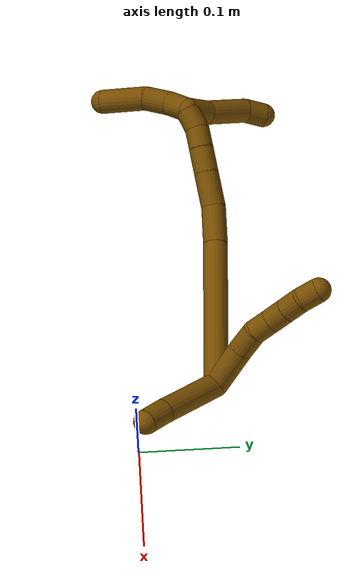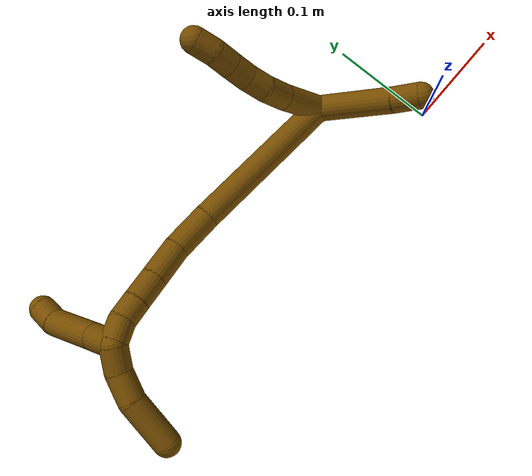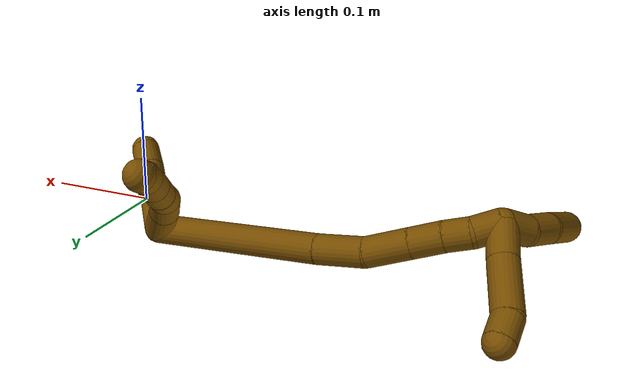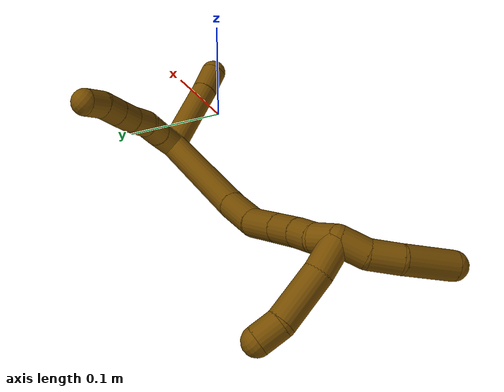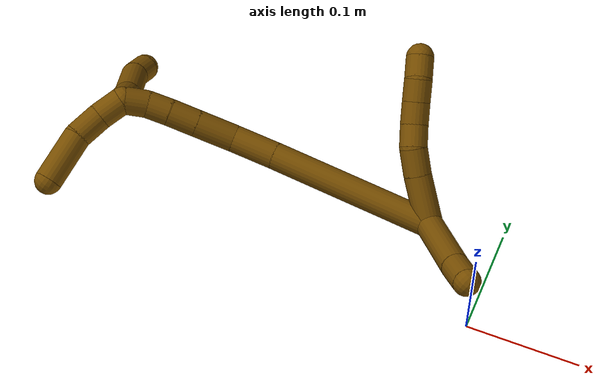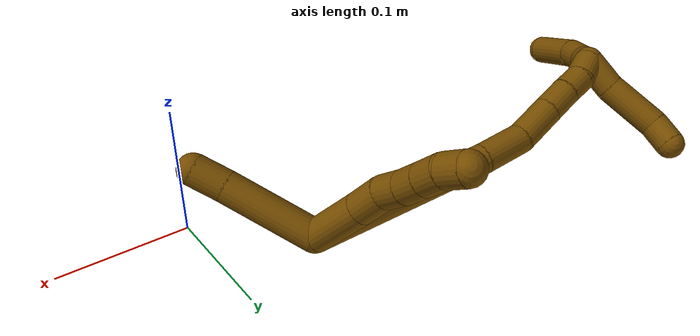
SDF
<sdf version="1.7">
 <world name="default">
  <model name="12">
   <static>0</static>
   <link name="12">
    <collision name="collision-cylinder-e_1_2_8">
     <pose>-0.017698 -0.001241 0.013758 0.089991 -0.908058 -0.043941</pose>
     <geometry><cylinder><radius>0.0125</radius><length>0.044902</length></cylinder></geometry>
     <surface>
      <friction><ode><mu>1.16</mu><mu2>1.16</mu2><slip1>0</slip1><slip2>0</slip2></ode></friction>
      <contact><ode><kp>1e+06</kp><kd>1</kd><max_vel>0</max_vel><min_depth>0.001</min_depth></ode></contact>
     </surface>
    </collision>
    <visual name="visual-cylinder-e_1_2_8">
     <pose>-0.017698 -0.001241 0.013758 0.089991 -0.908058 -0.043941</pose>
     <geometry><cylinder><radius>0.0125</radius><length>0.044902</length></cylinder></geometry>
     <material><ambient>0.466667 0.301961 0 1</ambient></material>
    </visual>
    <collision name="collision-cylinder-e_2_8_9">
     <pose>-0.044499 -0.003331 0.035828 0.101712 -0.828154 -0.044732</pose>
     <geometry><cylinder><radius>0.0125</radius><length>0.024713</length></cylinder></geometry>
     <surface>
      <friction><ode><mu>1.16</mu><mu2>1.16</mu2><slip1>0</slip1><slip2>0</slip2></ode></friction>
      <contact><ode><kp>1e+06</kp><kd>1</kd><max_vel>0</max_vel><min_depth>0.001</min_depth></ode></contact>
     </surface>
    </collision>
    <visual name="visual-cylinder-e_2_8_9">
     <pose>-0.044499 -0.003331 0.035828 0.101712 -0.828154 -0.044732</pose>
     <geometry><cylinder><radius>0.0125</radius><length>0.024713</length></cylinder></geometry>
     <material><ambient>0.466667 0.301961 0 1</ambient></material>
    </visual>
    <collision name="collision-cylinder-e_3_9_10">
     <pose>-0.060021 -0.002048 0.051642 -0.276876 -0.688673 0.09985</pose>
     <geometry><cylinder><radius>0.0125</radius><length>0.0202</length></cylinder></geometry>
     <surface>
      <friction><ode><mu>1.16</mu><mu2>1.16</mu2><slip1>0</slip1><slip2>0</slip2></ode></friction>
      <contact><ode><kp>1e+06</kp><kd>1</kd><max_vel>0</max_vel><min_depth>0.001</min_depth></ode></contact>
     </surface>
    </collision>
    <visual name="visual-cylinder-e_3_9_10">
     <pose>-0.060021 -0.002048 0.051642 -0.276876 -0.688673 0.09985</pose>
     <geometry><cylinder><radius>0.0125</radius><length>0.0202</length></cylinder></geometry>
     <material><ambient>0.466667 0.301961 0 1</ambient></material>
    </visual>
    <collision name="collision-cylinder-e_4_10_11">
     <pose>-0.072354 0.001237 0.067167 -0.142736 -0.630331 0.046607</pose>
     <geometry><cylinder><radius>0.0125</radius><length>0.02007</length></cylinder></geometry>
     <surface>
      <friction><ode><mu>1.16</mu><mu2>1.16</mu2><slip1>0</slip1><slip2>0</slip2></ode></friction>
      <contact><ode><kp>1e+06</kp><kd>1</kd><max_vel>0</max_vel><min_depth>0.001</min_depth></ode></contact>
     </surface>
    </collision>
    <visual name="visual-cylinder-e_4_10_11">
     <pose>-0.072354 0.001237 0.067167 -0.142736 -0.630331 0.046607</pose>
     <geometry><cylinder><radius>0.0125</radius><length>0.02007</length></cylinder></geometry>
     <material><ambient>0.466667 0.301961 0 1</ambient></material>
    </visual>
    <collision name="collision-cylinder-e_5_11_12">
     <pose>-0.084041 0.003456 0.083333 -0.130185 -0.612676 0.041229</pose>
     <geometry><cylinder><radius>0.0125</radius><length>0.020072</length></cylinder></geometry>
     <surface>
      <friction><ode><mu>1.16</mu><mu2>1.16</mu2><slip1>0</slip1><slip2>0</slip2></ode></friction>
      <contact><ode><kp>1e+06</kp><kd>1</kd><max_vel>0</max_vel><min_depth>0.001</min_depth></ode></contact>
     </surface>
    </collision>
    <visual name="visual-cylinder-e_5_11_12">
     <pose>-0.084041 0.003456 0.083333 -0.130185 -0.612676 0.041229</pose>
     <geometry><cylinder><radius>0.0125</radius><length>0.020072</length></cylinder></geometry>
     <material><ambient>0.466667 0.301961 0 1</ambient></material>
    </visual>
    <collision name="collision-cylinder-e_6_12_6">
     <pose>-0.09594 0.007855 0.098669 -0.433804 -0.658 0.150188</pose>
     <geometry><cylinder><radius>0.0125</radius><length>0.020043</length></cylinder></geometry>
     <surface>
      <friction><ode><mu>1.16</mu><mu2>1.16</mu2><slip1>0</slip1><slip2>0</slip2></ode></friction>
      <contact><ode><kp>1e+06</kp><kd>1</kd><max_vel>0</max_vel><min_depth>0.001</min_depth></ode></contact>
     </surface>
    </collision>
    <visual name="visual-cylinder-e_6_12_6">
     <pose>-0.09594 0.007855 0.098669 -0.433804 -0.658 0.150188</pose>
     <geometry><cylinder><radius>0.0125</radius><length>0.020043</length></cylinder></geometry>
     <material><ambient>0.466667 0.301961 0 1</ambient></material>
    </visual>
    <collision name="collision-cylinder-e_1_2_13">
     <pose>0.02275 -0.028967 0.002399 1.48815 0.664104 0.614754</pose>
     <geometry><cylinder><radius>0.0125</radius><length>0.073822</length></cylinder></geometry>
     <surface>
      <friction><ode><mu>1.16</mu><mu2>1.16</mu2><slip1>0</slip1><slip2>0</slip2></ode></friction>
      <contact><ode><kp>1e+06</kp><kd>1</kd><max_vel>0</max_vel><min_depth>0.001</min_depth></ode></contact>
     </surface>
    </collision>
    <visual name="visual-cylinder-e_1_2_13">
     <pose>0.02275 -0.028967 0.002399 1.48815 0.664104 0.614754</pose>
     <geometry><cylinder><radius>0.0125</radius><length>0.073822</length></cylinder></geometry>
     <material><ambient>0.466667 0.301961 0 1</ambient></material>
    </visual>
    <collision name="collision-cylinder-e_2_13_5">
     <pose>0.053919 -0.067867 0.006135 1.43713 0.698631 0.616778</pose>
     <geometry><cylinder><radius>0.0125</radius><length>0.026178</length></cylinder></geometry>
     <surface>
      <friction><ode><mu>1.16</mu><mu2>1.16</mu2><slip1>0</slip1><slip2>0</slip2></ode></friction>
      <contact><ode><kp>1e+06</kp><kd>1</kd><max_vel>0</max_vel><min_depth>0.001</min_depth></ode></contact>
     </surface>
    </collision>
    <visual name="visual-cylinder-e_2_13_5">
     <pose>0.053919 -0.067867 0.006135 1.43713 0.698631 0.616778</pose>
     <geometry><cylinder><radius>0.0125</radius><length>0.026178</length></cylinder></geometry>
     <material><ambient>0.466667 0.301961 0 1</ambient></material>
    </visual>
    <collision name="collision-cylinder-e_1_2_14">
     <pose>-0.072751 -0.005052 -0.022605 2.92172 -1.26256 -2.84189</pose>
     <geometry><cylinder><radius>0.0125</radius><length>0.152698</length></cylinder></geometry>
     <surface>
      <friction><ode><mu>1.16</mu><mu2>1.16</mu2><slip1>0</slip1><slip2>0</slip2></ode></friction>
      <contact><ode><kp>1e+06</kp><kd>1</kd><max_vel>0</max_vel><min_depth>0.001</min_depth></ode></contact>
     </surface>
    </collision>
    <visual name="visual-cylinder-e_1_2_14">
     <pose>-0.072751 -0.005052 -0.022605 2.92172 -1.26256 -2.84189</pose>
     <geometry><cylinder><radius>0.0125</radius><length>0.152698</length></cylinder></geometry>
     <material><ambient>0.466667 0.301961 0 1</ambient></material>
    </visual>
    <collision name="collision-cylinder-e_2_14_15">
     <pose>-0.164747 -0.012665 -0.051215 2.7384 -1.24373 -2.58605</pose>
     <geometry><cylinder><radius>0.0125</radius><length>0.040647</length></cylinder></geometry>
     <surface>
      <friction><ode><mu>1.16</mu><mu2>1.16</mu2><slip1>0</slip1><slip2>0</slip2></ode></friction>
      <contact><ode><kp>1e+06</kp><kd>1</kd><max_vel>0</max_vel><min_depth>0.001</min_depth></ode></contact>
     </surface>
    </collision>
    <visual name="visual-cylinder-e_2_14_15">
     <pose>-0.164747 -0.012665 -0.051215 2.7384 -1.24373 -2.58605</pose>
     <geometry><cylinder><radius>0.0125</radius><length>0.040647</length></cylinder></geometry>
     <material><ambient>0.466667 0.301961 0 1</ambient></material>
    </visual>
    <collision name="collision-cylinder-e_3_15_16">
     <pose>-0.20049 -0.022144 -0.061434 2.11783 -1.11441 -1.67405</pose>
     <geometry><cylinder><radius>0.0125</radius><length>0.036755</length></cylinder></geometry>
     <surface>
      <friction><ode><mu>1.16</mu><mu2>1.16</mu2><slip1>0</slip1><slip2>0</slip2></ode></friction>
      <contact><ode><kp>1e+06</kp><kd>1</kd><max_vel>0</max_vel><min_depth>0.001</min_depth></ode></contact>
     </surface>
    </collision>
    <visual name="visual-cylinder-e_3_15_16">
     <pose>-0.20049 -0.022144 -0.061434 2.11783 -1.11441 -1.67405</pose>
     <geometry><cylinder><radius>0.0125</radius><length>0.036755</length></cylinder></geometry>
     <material><ambient>0.466667 0.301961 0 1</ambient></material>
    </visual>
    <collision name="collision-cylinder-e_4_16_17">
     <pose>-0.228799 -0.03399 -0.068651 2.11825 -1.11634 -1.67668</pose>
     <geometry><cylinder><radius>0.0125</radius><length>0.026295</length></cylinder></geometry>
     <surface>
      <friction><ode><mu>1.16</mu><mu2>1.16</mu2><slip1>0</slip1><slip2>0</slip2></ode></friction>
      <contact><ode><kp>1e+06</kp><kd>1</kd><max_vel>0</max_vel><min_depth>0.001</min_depth></ode></contact>
     </surface>
    </collision>
    <visual name="visual-cylinder-e_4_16_17">
     <pose>-0.228799 -0.03399 -0.068651 2.11825 -1.11634 -1.67668</pose>
     <geometry><cylinder><radius>0.0125</radius><length>0.026295</length></cylinder></geometry>
     <material><ambient>0.466667 0.301961 0 1</ambient></material>
    </visual>
    <collision name="collision-cylinder-e_5_17_18">
     <pose>-0.25025 -0.04248 -0.074628 2.26633 -1.1221 -1.86157</pose>
     <geometry><cylinder><radius>0.0125</radius><length>0.021394</length></cylinder></geometry>
     <surface>
      <friction><ode><mu>1.16</mu><mu2>1.16</mu2><slip1>0</slip1><slip2>0</slip2></ode></friction>
      <contact><ode><kp>1e+06</kp><kd>1</kd><max_vel>0</max_vel><min_depth>0.001</min_depth></ode></contact>
     </surface>
    </collision>
    <visual name="visual-cylinder-e_5_17_18">
     <pose>-0.25025 -0.04248 -0.074628 2.26633 -1.1221 -1.86157</pose>
     <geometry><cylinder><radius>0.0125</radius><length>0.021394</length></cylinder></geometry>
     <material><ambient>0.466667 0.301961 0 1</ambient></material>
    </visual>
    <collision name="collision-cylinder-e_6_18_1">
     <pose>-0.268175 -0.05212 -0.081813 2.17677 -0.84225 -1.41517</pose>
     <geometry><cylinder><radius>0.0125</radius><length>0.022212</length></cylinder></geometry>
     <surface>
      <friction><ode><mu>1.16</mu><mu2>1.16</mu2><slip1>0</slip1><slip2>0</slip2></ode></friction>
      <contact><ode><kp>1e+06</kp><kd>1</kd><max_vel>0</max_vel><min_depth>0.001</min_depth></ode></contact>
     </surface>
    </collision>
    <visual name="visual-cylinder-e_6_18_1">
     <pose>-0.268175 -0.05212 -0.081813 2.17677 -0.84225 -1.41517</pose>
     <geometry><cylinder><radius>0.0125</radius><length>0.022212</length></cylinder></geometry>
     <material><ambient>0.466667 0.301961 0 1</ambient></material>
    </visual>
    <collision name="collision-cylinder-e_1_1_19">
     <pose>-0.2794 -0.061762 -0.097607 2.84308 -0.237881 -1.34301</pose>
     <geometry><cylinder><radius>0.0125</radius><length>0.02494</length></cylinder></geometry>
     <surface>
      <friction><ode><mu>1.16</mu><mu2>1.16</mu2><slip1>0</slip1><slip2>0</slip2></ode></friction>
      <contact><ode><kp>1e+06</kp><kd>1</kd><max_vel>0</max_vel><min_depth>0.001</min_depth></ode></contact>
     </surface>
    </collision>
    <visual name="visual-cylinder-e_1_1_19">
     <pose>-0.2794 -0.061762 -0.097607 2.84308 -0.237881 -1.34301</pose>
     <geometry><cylinder><radius>0.0125</radius><length>0.02494</length></cylinder></geometry>
     <material><ambient>0.466667 0.301961 0 1</ambient></material>
    </visual>
    <collision name="collision-cylinder-e_2_19_20">
     <pose>-0.283098 -0.072591 -0.120712 2.579 -0.055691 -0.192187</pose>
     <geometry><cylinder><radius>0.0125</radius><length>0.027285</length></cylinder></geometry>
     <surface>
      <friction><ode><mu>1.16</mu><mu2>1.16</mu2><slip1>0</slip1><slip2>0</slip2></ode></friction>
      <contact><ode><kp>1e+06</kp><kd>1</kd><max_vel>0</max_vel><min_depth>0.001</min_depth></ode></contact>
     </surface>
    </collision>
    <visual name="visual-cylinder-e_2_19_20">
     <pose>-0.283098 -0.072591 -0.120712 2.579 -0.055691 -0.192187</pose>
     <geometry><cylinder><radius>0.0125</radius><length>0.027285</length></cylinder></geometry>
     <material><ambient>0.466667 0.301961 0 1</ambient></material>
    </visual>
    <collision name="collision-cylinder-e_3_20_4">
     <pose>-0.278864 -0.091328 -0.152584 2.62828 0.21057 0.765592</pose>
     <geometry><cylinder><radius>0.0125</radius><length>0.047775</length></cylinder></geometry>
     <surface>
      <friction><ode><mu>1.16</mu><mu2>1.16</mu2><slip1>0</slip1><slip2>0</slip2></ode></friction>
      <contact><ode><kp>1e+06</kp><kd>1</kd><max_vel>0</max_vel><min_depth>0.001</min_depth></ode></contact>
     </surface>
    </collision>
    <visual name="visual-cylinder-e_3_20_4">
     <pose>-0.278864 -0.091328 -0.152584 2.62828 0.21057 0.765592</pose>
     <geometry><cylinder><radius>0.0125</radius><length>0.047775</length></cylinder></geometry>
     <material><ambient>0.466667 0.301961 0 1</ambient></material>
    </visual>
    <collision name="collision-cylinder-e_1_1_21">
     <pose>-0.280454 -0.044216 -0.087755 -1.6939 -0.276131 0.31185</pose>
     <geometry><cylinder><radius>0.0125</radius><length>0.029286</length></cylinder></geometry>
     <surface>
      <friction><ode><mu>1.16</mu><mu2>1.16</mu2><slip1>0</slip1><slip2>0</slip2></ode></friction>
      <contact><ode><kp>1e+06</kp><kd>1</kd><max_vel>0</max_vel><min_depth>0.001</min_depth></ode></contact>
     </surface>
    </collision>
    <visual name="visual-cylinder-e_1_1_21">
     <pose>-0.280454 -0.044216 -0.087755 -1.6939 -0.276131 0.31185</pose>
     <geometry><cylinder><radius>0.0125</radius><length>0.029286</length></cylinder></geometry>
     <material><ambient>0.466667 0.301961 0 1</ambient></material>
    </visual>
    <collision name="collision-cylinder-e_2_21_22">
     <pose>-0.294205 -0.00791 -0.088117 -1.50962 -0.41145 0.387643</pose>
     <geometry><cylinder><radius>0.0125</radius><length>0.048806</length></cylinder></geometry>
     <surface>
      <friction><ode><mu>1.16</mu><mu2>1.16</mu2><slip1>0</slip1><slip2>0</slip2></ode></friction>
      <contact><ode><kp>1e+06</kp><kd>1</kd><max_vel>0</max_vel><min_depth>0.001</min_depth></ode></contact>
     </surface>
    </collision>
    <visual name="visual-cylinder-e_2_21_22">
     <pose>-0.294205 -0.00791 -0.088117 -1.50962 -0.41145 0.387643</pose>
     <geometry><cylinder><radius>0.0125</radius><length>0.048806</length></cylinder></geometry>
     <material><ambient>0.466667 0.301961 0 1</ambient></material>
    </visual>
    <collision name="collision-cylinder-e_3_22_3">
     <pose>-0.305322 0.02498 -0.084196 -1.33367 -0.124199 0.097807</pose>
     <geometry><cylinder><radius>0.0125</radius><length>0.021909</length></cylinder></geometry>
     <surface>
      <friction><ode><mu>1.16</mu><mu2>1.16</mu2><slip1>0</slip1><slip2>0</slip2></ode></friction>
      <contact><ode><kp>1e+06</kp><kd>1</kd><max_vel>0</max_vel><min_depth>0.001</min_depth></ode></contact>
     </surface>
    </collision>
    <visual name="visual-cylinder-e_3_22_3">
     <pose>-0.305322 0.02498 -0.084196 -1.33367 -0.124199 0.097807</pose>
     <geometry><cylinder><radius>0.0125</radius><length>0.021909</length></cylinder></geometry>
     <material><ambient>0.466667 0.301961 0 1</ambient></material>
    </visual>
    <collision name="collision-sphere-3">
     <pose>-0.306679 0.035546 -0.081643 0 -0 0</pose>
     <geometry><sphere><radius>0.0125</radius></sphere></geometry>
     <surface>
      <friction><ode><mu>1.16</mu><mu2>1.16</mu2><slip1>0</slip1><slip2>0</slip2></ode></friction>
      <contact><ode><kp>1e+06</kp><kd>1</kd><max_vel>0</max_vel><min_depth>0.001</min_depth></ode></contact>
     </surface>
    </collision>
    <visual name="visual-sphere-3">
     <pose>-0.306679 0.035546 -0.081643 0 -0 0</pose>
     <geometry><sphere><radius>0.0125</radius></sphere></geometry>
     <material><ambient>0.466667 0.301961 0 1</ambient></material>
    </visual>
    <collision name="collision-sphere-22">
     <pose>-0.303965 0.014414 -0.086749 0 -0 0</pose>
     <geometry><sphere><radius>0.0125</radius></sphere></geometry>
     <surface>
      <friction><ode><mu>1.16</mu><mu2>1.16</mu2><slip1>0</slip1><slip2>0</slip2></ode></friction>
      <contact><ode><kp>1e+06</kp><kd>1</kd><max_vel>0</max_vel><min_depth>0.001</min_depth></ode></contact>
     </surface>
    </collision>
    <visual name="visual-sphere-22">
     <pose>-0.303965 0.014414 -0.086749 0 -0 0</pose>
     <geometry><sphere><radius>0.0125</radius></sphere></geometry>
     <material><ambient>0.466667 0.301961 0 1</ambient></material>
    </visual>
    <collision name="collision-sphere-21">
     <pose>-0.284446 -0.030235 -0.089484 0 -0 0</pose>
     <geometry><sphere><radius>0.0125</radius></sphere></geometry>
     <surface>
      <friction><ode><mu>1.16</mu><mu2>1.16</mu2><slip1>0</slip1><slip2>0</slip2></ode></friction>
      <contact><ode><kp>1e+06</kp><kd>1</kd><max_vel>0</max_vel><min_depth>0.001</min_depth></ode></contact>
     </surface>
    </collision>
    <visual name="visual-sphere-21">
     <pose>-0.284446 -0.030235 -0.089484 0 -0 0</pose>
     <geometry><sphere><radius>0.0125</radius></sphere></geometry>
     <material><ambient>0.466667 0.301961 0 1</ambient></material>
    </visual>
    <collision name="collision-sphere-4">
     <pose>-0.273871 -0.102799 -0.172933 0 -0 0</pose>
     <geometry><sphere><radius>0.0125</radius></sphere></geometry>
     <surface>
      <friction><ode><mu>1.16</mu><mu2>1.16</mu2><slip1>0</slip1><slip2>0</slip2></ode></friction>
      <contact><ode><kp>1e+06</kp><kd>1</kd><max_vel>0</max_vel><min_depth>0.001</min_depth></ode></contact>
     </surface>
    </collision>
    <visual name="visual-sphere-4">
     <pose>-0.273871 -0.102799 -0.172933 0 -0 0</pose>
     <geometry><sphere><radius>0.0125</radius></sphere></geometry>
     <material><ambient>0.466667 0.301961 0 1</ambient></material>
    </visual>
    <collision name="collision-sphere-20">
     <pose>-0.283857 -0.079857 -0.132234 0 -0 0</pose>
     <geometry><sphere><radius>0.0125</radius></sphere></geometry>
     <surface>
      <friction><ode><mu>1.16</mu><mu2>1.16</mu2><slip1>0</slip1><slip2>0</slip2></ode></friction>
      <contact><ode><kp>1e+06</kp><kd>1</kd><max_vel>0</max_vel><min_depth>0.001</min_depth></ode></contact>
     </surface>
    </collision>
    <visual name="visual-sphere-20">
     <pose>-0.283857 -0.079857 -0.132234 0 -0 0</pose>
     <geometry><sphere><radius>0.0125</radius></sphere></geometry>
     <material><ambient>0.466667 0.301961 0 1</ambient></material>
    </visual>
    <collision name="collision-sphere-12">
     <pose>-0.089812 0.004522 0.091474 0 -0 0</pose>
     <geometry><sphere><radius>0.0125</radius></sphere></geometry>
     <surface>
      <friction><ode><mu>1.16</mu><mu2>1.16</mu2><slip1>0</slip1><slip2>0</slip2></ode></friction>
      <contact><ode><kp>1e+06</kp><kd>1</kd><max_vel>0</max_vel><min_depth>0.001</min_depth></ode></contact>
     </surface>
    </collision>
    <visual name="visual-sphere-12">
     <pose>-0.089812 0.004522 0.091474 0 -0 0</pose>
     <geometry><sphere><radius>0.0125</radius></sphere></geometry>
     <material><ambient>0.466667 0.301961 0 1</ambient></material>
    </visual>
    <collision name="collision-sphere-11">
     <pose>-0.078269 0.00239 0.075192 0 -0 0</pose>
     <geometry><sphere><radius>0.0125</radius></sphere></geometry>
     <surface>
      <friction><ode><mu>1.16</mu><mu2>1.16</mu2><slip1>0</slip1><slip2>0</slip2></ode></friction>
      <contact><ode><kp>1e+06</kp><kd>1</kd><max_vel>0</max_vel><min_depth>0.001</min_depth></ode></contact>
     </surface>
    </collision>
    <visual name="visual-sphere-11">
     <pose>-0.078269 0.00239 0.075192 0 -0 0</pose>
     <geometry><sphere><radius>0.0125</radius></sphere></geometry>
     <material><ambient>0.466667 0.301961 0 1</ambient></material>
    </visual>
    <collision name="collision-sphere-10">
     <pose>-0.06644 8.4e-05 0.059143 0 -0 0</pose>
     <geometry><sphere><radius>0.0125</radius></sphere></geometry>
     <surface>
      <friction><ode><mu>1.16</mu><mu2>1.16</mu2><slip1>0</slip1><slip2>0</slip2></ode></friction>
      <contact><ode><kp>1e+06</kp><kd>1</kd><max_vel>0</max_vel><min_depth>0.001</min_depth></ode></contact>
     </surface>
    </collision>
    <visual name="visual-sphere-10">
     <pose>-0.06644 8.4e-05 0.059143 0 -0 0</pose>
     <geometry><sphere><radius>0.0125</radius></sphere></geometry>
     <material><ambient>0.466667 0.301961 0 1</ambient></material>
    </visual>
    <collision name="collision-sphere-9">
     <pose>-0.053602 -0.00418 0.044141 0 -0 0</pose>
     <geometry><sphere><radius>0.0125</radius></sphere></geometry>
     <surface>
      <friction><ode><mu>1.16</mu><mu2>1.16</mu2><slip1>0</slip1><slip2>0</slip2></ode></friction>
      <contact><ode><kp>1e+06</kp><kd>1</kd><max_vel>0</max_vel><min_depth>0.001</min_depth></ode></contact>
     </surface>
    </collision>
    <visual name="visual-sphere-9">
     <pose>-0.053602 -0.00418 0.044141 0 -0 0</pose>
     <geometry><sphere><radius>0.0125</radius></sphere></geometry>
     <material><ambient>0.466667 0.301961 0 1</ambient></material>
    </visual>
    <collision name="collision-sphere-2">
     <geometry><sphere><radius>0.0125</radius></sphere></geometry>
     <surface>
      <friction><ode><mu>1.16</mu><mu2>1.16</mu2><slip1>0</slip1><slip2>0</slip2></ode></friction>
      <contact><ode><kp>1e+06</kp><kd>1</kd><max_vel>0</max_vel><min_depth>0.001</min_depth></ode></contact>
     </surface>
    </collision>
    <visual name="visual-sphere-2">
     <geometry><sphere><radius>0.0125</radius></sphere></geometry>
     <material><ambient>0.466667 0.301961 0 1</ambient></material>
    </visual>
    <collision name="collision-sphere-19">
     <pose>-0.282338 -0.065326 -0.10919 0 -0 0</pose>
     <geometry><sphere><radius>0.0125</radius></sphere></geometry>
     <surface>
      <friction><ode><mu>1.16</mu><mu2>1.16</mu2><slip1>0</slip1><slip2>0</slip2></ode></friction>
      <contact><ode><kp>1e+06</kp><kd>1</kd><max_vel>0</max_vel><min_depth>0.001</min_depth></ode></contact>
     </surface>
    </collision>
    <visual name="visual-sphere-19">
     <pose>-0.282338 -0.065326 -0.10919 0 -0 0</pose>
     <geometry><sphere><radius>0.0125</radius></sphere></geometry>
     <material><ambient>0.466667 0.301961 0 1</ambient></material>
    </visual>
    <collision name="collision-sphere-8">
     <pose>-0.035396 -0.002483 0.027515 0 -0 0</pose>
     <geometry><sphere><radius>0.0125</radius></sphere></geometry>
     <surface>
      <friction><ode><mu>1.16</mu><mu2>1.16</mu2><slip1>0</slip1><slip2>0</slip2></ode></friction>
      <contact><ode><kp>1e+06</kp><kd>1</kd><max_vel>0</max_vel><min_depth>0.001</min_depth></ode></contact>
     </surface>
    </collision>
    <visual name="visual-sphere-8">
     <pose>-0.035396 -0.002483 0.027515 0 -0 0</pose>
     <geometry><sphere><radius>0.0125</radius></sphere></geometry>
     <material><ambient>0.466667 0.301961 0 1</ambient></material>
    </visual>
    <collision name="collision-sphere-6">
     <pose>-0.102069 0.011187 0.105863 0 -0 0</pose>
     <geometry><sphere><radius>0.0125</radius></sphere></geometry>
     <surface>
      <friction><ode><mu>1.16</mu><mu2>1.16</mu2><slip1>0</slip1><slip2>0</slip2></ode></friction>
      <contact><ode><kp>1e+06</kp><kd>1</kd><max_vel>0</max_vel><min_depth>0.001</min_depth></ode></contact>
     </surface>
    </collision>
    <visual name="visual-sphere-6">
     <pose>-0.102069 0.011187 0.105863 0 -0 0</pose>
     <geometry><sphere><radius>0.0125</radius></sphere></geometry>
     <material><ambient>0.466667 0.301961 0 1</ambient></material>
    </visual>
    <collision name="collision-sphere-13">
     <pose>0.045501 -0.057934 0.004799 0 -0 0</pose>
     <geometry><sphere><radius>0.0125</radius></sphere></geometry>
     <surface>
      <friction><ode><mu>1.16</mu><mu2>1.16</mu2><slip1>0</slip1><slip2>0</slip2></ode></friction>
      <contact><ode><kp>1e+06</kp><kd>1</kd><max_vel>0</max_vel><min_depth>0.001</min_depth></ode></contact>
     </surface>
    </collision>
    <visual name="visual-sphere-13">
     <pose>0.045501 -0.057934 0.004799 0 -0 0</pose>
     <geometry><sphere><radius>0.0125</radius></sphere></geometry>
     <material><ambient>0.466667 0.301961 0 1</ambient></material>
    </visual>
    <collision name="collision-sphere-5">
     <pose>0.062337 -0.0778 0.00747 0 -0 0</pose>
     <geometry><sphere><radius>0.0125</radius></sphere></geometry>
     <surface>
      <friction><ode><mu>1.16</mu><mu2>1.16</mu2><slip1>0</slip1><slip2>0</slip2></ode></friction>
      <contact><ode><kp>1e+06</kp><kd>1</kd><max_vel>0</max_vel><min_depth>0.001</min_depth></ode></contact>
     </surface>
    </collision>
    <visual name="visual-sphere-5">
     <pose>0.062337 -0.0778 0.00747 0 -0 0</pose>
     <geometry><sphere><radius>0.0125</radius></sphere></geometry>
     <material><ambient>0.466667 0.301961 0 1</ambient></material>
    </visual>
    <collision name="collision-sphere-14">
     <pose>-0.145501 -0.010104 -0.04521 0 -0 0</pose>
     <geometry><sphere><radius>0.0125</radius></sphere></geometry>
     <surface>
      <friction><ode><mu>1.16</mu><mu2>1.16</mu2><slip1>0</slip1><slip2>0</slip2></ode></friction>
      <contact><ode><kp>1e+06</kp><kd>1</kd><max_vel>0</max_vel><min_depth>0.001</min_depth></ode></contact>
     </surface>
    </collision>
    <visual name="visual-sphere-14">
     <pose>-0.145501 -0.010104 -0.04521 0 -0 0</pose>
     <geometry><sphere><radius>0.0125</radius></sphere></geometry>
     <material><ambient>0.466667 0.301961 0 1</ambient></material>
    </visual>
    <collision name="collision-sphere-15">
     <pose>-0.183993 -0.015227 -0.057221 0 -0 0</pose>
     <geometry><sphere><radius>0.0125</radius></sphere></geometry>
     <surface>
      <friction><ode><mu>1.16</mu><mu2>1.16</mu2><slip1>0</slip1><slip2>0</slip2></ode></friction>
      <contact><ode><kp>1e+06</kp><kd>1</kd><max_vel>0</max_vel><min_depth>0.001</min_depth></ode></contact>
     </surface>
    </collision>
    <visual name="visual-sphere-15">
     <pose>-0.183993 -0.015227 -0.057221 0 -0 0</pose>
     <geometry><sphere><radius>0.0125</radius></sphere></geometry>
     <material><ambient>0.466667 0.301961 0 1</ambient></material>
    </visual>
    <collision name="collision-sphere-16">
     <pose>-0.216986 -0.029062 -0.065647 0 -0 0</pose>
     <geometry><sphere><radius>0.0125</radius></sphere></geometry>
     <surface>
      <friction><ode><mu>1.16</mu><mu2>1.16</mu2><slip1>0</slip1><slip2>0</slip2></ode></friction>
      <contact><ode><kp>1e+06</kp><kd>1</kd><max_vel>0</max_vel><min_depth>0.001</min_depth></ode></contact>
     </surface>
    </collision>
    <visual name="visual-sphere-16">
     <pose>-0.216986 -0.029062 -0.065647 0 -0 0</pose>
     <geometry><sphere><radius>0.0125</radius></sphere></geometry>
     <material><ambient>0.466667 0.301961 0 1</ambient></material>
    </visual>
    <collision name="collision-sphere-17">
     <pose>-0.240612 -0.038917 -0.071655 0 -0 0</pose>
     <geometry><sphere><radius>0.0125</radius></sphere></geometry>
     <surface>
      <friction><ode><mu>1.16</mu><mu2>1.16</mu2><slip1>0</slip1><slip2>0</slip2></ode></friction>
      <contact><ode><kp>1e+06</kp><kd>1</kd><max_vel>0</max_vel><min_depth>0.001</min_depth></ode></contact>
     </surface>
    </collision>
    <visual name="visual-sphere-17">
     <pose>-0.240612 -0.038917 -0.071655 0 -0 0</pose>
     <geometry><sphere><radius>0.0125</radius></sphere></geometry>
     <material><ambient>0.466667 0.301961 0 1</ambient></material>
    </visual>
    <collision name="collision-sphere-18">
     <pose>-0.259888 -0.046042 -0.077602 0 -0 0</pose>
     <geometry><sphere><radius>0.0125</radius></sphere></geometry>
     <surface>
      <friction><ode><mu>1.16</mu><mu2>1.16</mu2><slip1>0</slip1><slip2>0</slip2></ode></friction>
      <contact><ode><kp>1e+06</kp><kd>1</kd><max_vel>0</max_vel><min_depth>0.001</min_depth></ode></contact>
     </surface>
    </collision>
    <visual name="visual-sphere-18">
     <pose>-0.259888 -0.046042 -0.077602 0 -0 0</pose>
     <geometry><sphere><radius>0.0125</radius></sphere></geometry>
     <material><ambient>0.466667 0.301961 0 1</ambient></material>
    </visual>
    <collision name="collision-sphere-1">
     <pose>-0.276461 -0.058198 -0.086025 0 -0 0</pose>
     <geometry><sphere><radius>0.0125</radius></sphere></geometry>
     <surface>
      <friction><ode><mu>1.16</mu><mu2>1.16</mu2><slip1>0</slip1><slip2>0</slip2></ode></friction>
      <contact><ode><kp>1e+06</kp><kd>1</kd><max_vel>0</max_vel><min_depth>0.001</min_depth></ode></contact>
     </surface>
    </collision>
    <visual name="visual-sphere-1">
     <pose>-0.276461 -0.058198 -0.086025 0 -0 0</pose>
     <geometry><sphere><radius>0.0125</radius></sphere></geometry>
     <material><ambient>0.466667 0.301961 0 1</ambient></material>
    </visual>
    <inertial>
     <pose>-0.139807 -0.023895 -0.035815 0 -0 0</pose>
     <mass>0.75</mass>
     <inertia>
      <ixx>-6.1e-05</ixx>
      <ixy>0</ixy>
      <ixz>0</ixz>
      <iyy>0.000332</iyy>
      <iyz>0</iyz>
      <izz>0.000341</izz>
     </inertia>
    </inertial>
   </link>
   <pose>-0.06371 0.080019 0.012437 -0.774899 0.26263 -0.316241</pose>
  </model>
 </world>
</sdf>
